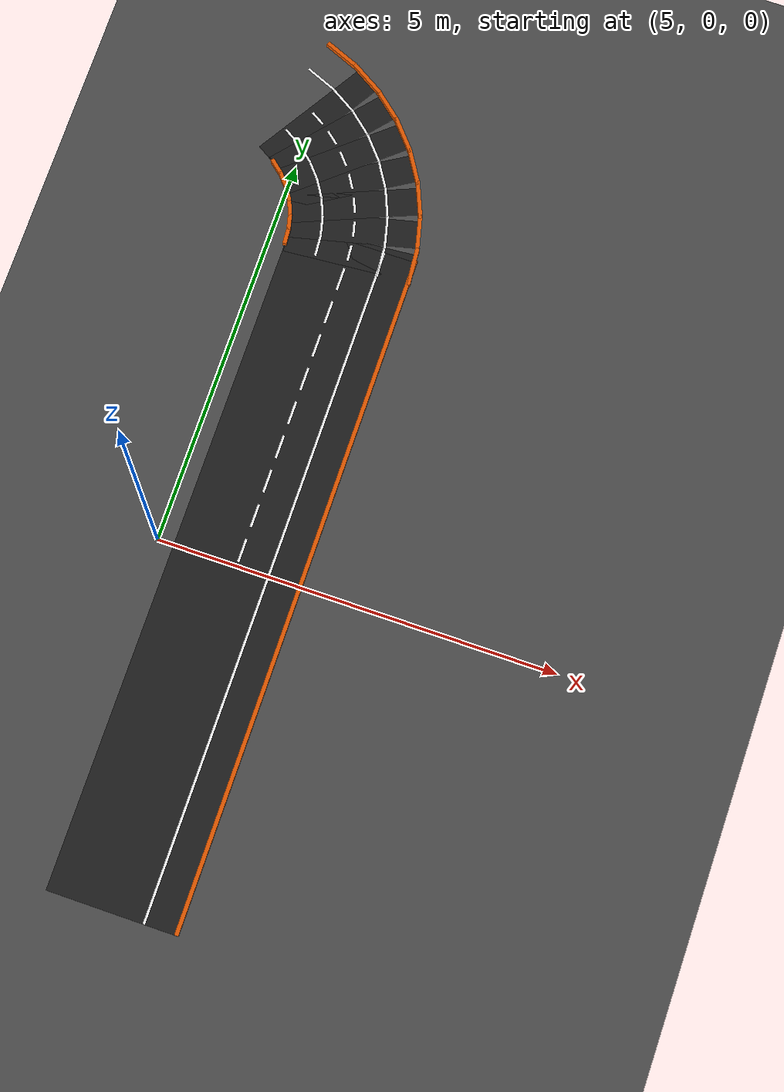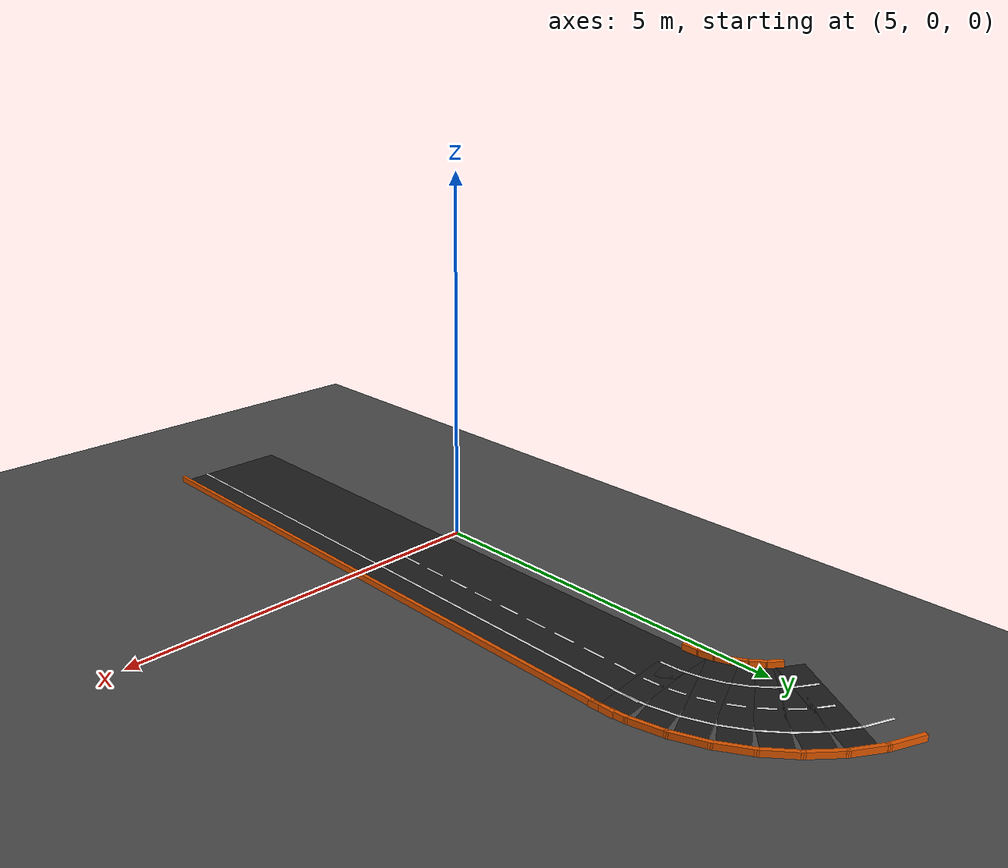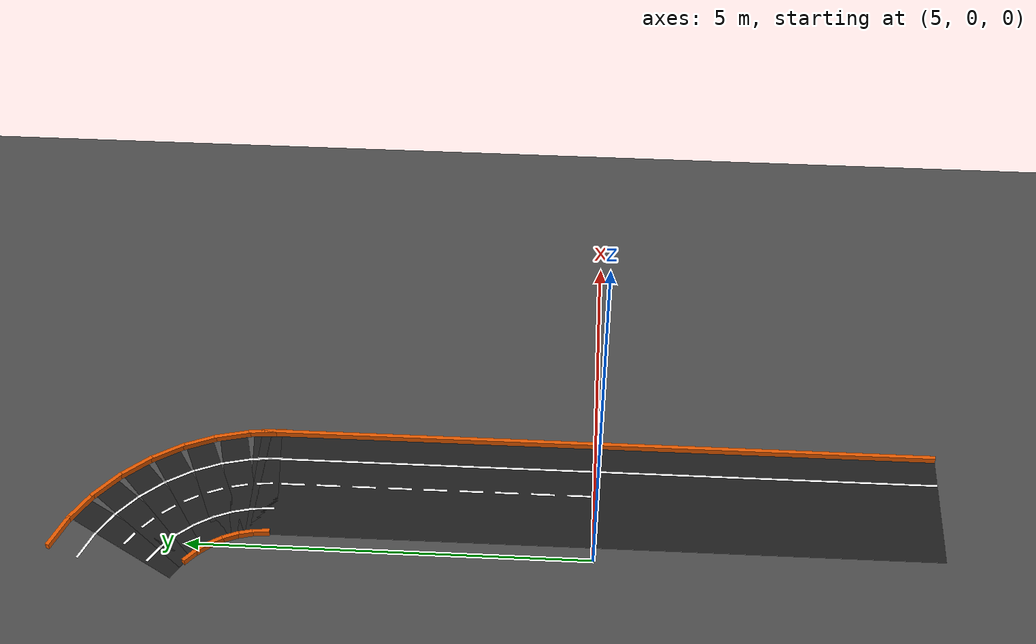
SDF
<sdf version="1.6">
 <world name="lab_track">
  <model name="ground_plane">
   <static>true</static>
   <link name="link">
    <collision name="collision">
     <geometry><plane><normal>0 0 1</normal><size>200 200</size></plane></geometry>
    </collision>
    <visual name="visual">
     <geometry><plane><normal>0 0 1</normal><size>200 200</size></plane></geometry>
     <material><ambient>0.3 0.3 0.3 1</ambient><diffuse>0.3 0.3 0.3 1</diffuse></material>
    </visual>
   </link>
  </model>
  <model name="m46">
   <static>true</static>
   <pose>6.0000 0.0000 0.00100 0 0 0.00000</pose>
   <link name="l">
    <visual name="v">
     <geometry><box><size>1.6000 8.6000 0.0010</size></box></geometry>
     <material><ambient>0.12 0.12 0.12 1</ambient><diffuse>0.12 0.12 0.12 1</diffuse></material>
    </visual>
   </link>
  </model>
  <model name="m48">
   <static>true</static>
   <pose>6.8000 0.0000 0.04000 0 0 0.00000</pose>
   <link name="l">
    <visual name="v">
     <geometry><box><size>0.0500 8.6000 0.0800</size></box></geometry>
     <material><ambient>0.9 0.35 0.0 1</ambient><diffuse>0.9 0.35 0.0 1</diffuse></material>
    </visual>
   </link>
  </model>
  <model name="m50">
   <static>true</static>
   <pose>6.4000 0.0000 0.00200 0 0 0.00000</pose>
   <link name="l">
    <visual name="v">
     <geometry><box><size>0.0300 8.6000 0.0010</size></box></geometry>
     <material><ambient>1 1 1 1</ambient><diffuse>1 1 1 1</diffuse></material>
    </visual>
   </link>
  </model>
  <model name="m60">
   <static>true</static>
   <pose>6.0000 0.2000 0.00200 0 0 0.00000</pose>
   <link name="l">
    <visual name="v">
     <geometry><box><size>0.0300 0.3000 0.0010</size></box></geometry>
     <material><ambient>1 1 1 1</ambient><diffuse>1 1 1 1</diffuse></material>
    </visual>
   </link>
  </model>
  <model name="m61">
   <static>true</static>
   <pose>6.0000 0.6500 0.00200 0 0 0.00000</pose>
   <link name="l">
    <visual name="v">
     <geometry><box><size>0.0300 0.3000 0.0010</size></box></geometry>
     <material><ambient>1 1 1 1</ambient><diffuse>1 1 1 1</diffuse></material>
    </visual>
   </link>
  </model>
  <model name="m62">
   <static>true</static>
   <pose>6.0000 1.1000 0.00200 0 0 0.00000</pose>
   <link name="l">
    <visual name="v">
     <geometry><box><size>0.0300 0.3000 0.0010</size></box></geometry>
     <material><ambient>1 1 1 1</ambient><diffuse>1 1 1 1</diffuse></material>
    </visual>
   </link>
  </model>
  <model name="m63">
   <static>true</static>
   <pose>6.0000 1.5500 0.00200 0 0 0.00000</pose>
   <link name="l">
    <visual name="v">
     <geometry><box><size>0.0300 0.3000 0.0010</size></box></geometry>
     <material><ambient>1 1 1 1</ambient><diffuse>1 1 1 1</diffuse></material>
    </visual>
   </link>
  </model>
  <model name="m64">
   <static>true</static>
   <pose>6.0000 2.0000 0.00200 0 0 0.00000</pose>
   <link name="l">
    <visual name="v">
     <geometry><box><size>0.0300 0.3000 0.0010</size></box></geometry>
     <material><ambient>1 1 1 1</ambient><diffuse>1 1 1 1</diffuse></material>
    </visual>
   </link>
  </model>
  <model name="m65">
   <static>true</static>
   <pose>6.0000 2.4500 0.00200 0 0 0.00000</pose>
   <link name="l">
    <visual name="v">
     <geometry><box><size>0.0300 0.3000 0.0010</size></box></geometry>
     <material><ambient>1 1 1 1</ambient><diffuse>1 1 1 1</diffuse></material>
    </visual>
   </link>
  </model>
  <model name="m66">
   <static>true</static>
   <pose>6.0000 2.9000 0.00200 0 0 0.00000</pose>
   <link name="l">
    <visual name="v">
     <geometry><box><size>0.0300 0.3000 0.0010</size></box></geometry>
     <material><ambient>1 1 1 1</ambient><diffuse>1 1 1 1</diffuse></material>
    </visual>
   </link>
  </model>
  <model name="m67">
   <static>true</static>
   <pose>6.0000 3.3500 0.00200 0 0 0.00000</pose>
   <link name="l">
    <visual name="v">
     <geometry><box><size>0.0300 0.3000 0.0010</size></box></geometry>
     <material><ambient>1 1 1 1</ambient><diffuse>1 1 1 1</diffuse></material>
    </visual>
   </link>
  </model>
  <model name="m68">
   <static>true</static>
   <pose>6.0000 3.8000 0.00200 0 0 0.00000</pose>
   <link name="l">
    <visual name="v">
     <geometry><box><size>0.0300 0.3000 0.0010</size></box></geometry>
     <material><ambient>1 1 1 1</ambient><diffuse>1 1 1 1</diffuse></material>
    </visual>
   </link>
  </model>
  <model name="m152">
   <static>true</static>
   <pose>5.9938 4.1569 0.00100 0 0 1.64934</pose>
   <link name="l">
    <visual name="v">
     <geometry><box><size>0.3519 1.6000 0.0010</size></box></geometry>
     <material><ambient>0.12 0.12 0.12 1</ambient><diffuse>0.12 0.12 0.12 1</diffuse></material>
    </visual>
   </link>
  </model>
  <model name="m153">
   <static>true</static>
   <pose>5.1963 4.0942 0.04000 0 0 1.64934</pose>
   <link name="l">
    <visual name="v">
     <geometry><box><size>0.2111 0.0500 0.0800</size></box></geometry>
     <material><ambient>0.9 0.35 0.0 1</ambient><diffuse>0.9 0.35 0.0 1</diffuse></material>
    </visual>
   </link>
  </model>
  <model name="m154">
   <static>true</static>
   <pose>6.7914 4.2197 0.04000 0 0 1.64934</pose>
   <link name="l">
    <visual name="v">
     <geometry><box><size>0.4926 0.0500 0.0800</size></box></geometry>
     <material><ambient>0.9 0.35 0.0 1</ambient><diffuse>0.9 0.35 0.0 1</diffuse></material>
    </visual>
   </link>
  </model>
  <model name="m155">
   <static>true</static>
   <pose>5.5951 4.1255 0.00200 0 0 1.64934</pose>
   <link name="l">
    <visual name="v">
     <geometry><box><size>0.2815 0.0300 0.0010</size></box></geometry>
     <material><ambient>1 1 1 1</ambient><diffuse>1 1 1 1</diffuse></material>
    </visual>
   </link>
  </model>
  <model name="m156">
   <static>true</static>
   <pose>6.3926 4.1883 0.00200 0 0 1.64934</pose>
   <link name="l">
    <visual name="v">
     <geometry><box><size>0.4222 0.0300 0.0010</size></box></geometry>
     <material><ambient>1 1 1 1</ambient><diffuse>1 1 1 1</diffuse></material>
    </visual>
   </link>
  </model>
  <model name="m157">
   <static>true</static>
   <pose>5.9938 4.1569 0.00200 0 0 1.64934</pose>
   <link name="l">
    <visual name="v">
     <geometry><box><size>0.2042 0.0300 0.0010</size></box></geometry>
     <material><ambient>1 1 1 1</ambient><diffuse>1 1 1 1</diffuse></material>
    </visual>
   </link>
  </model>
  <model name="m158">
   <static>true</static>
   <pose>5.9447 4.4669 0.00100 0 0 1.80642</pose>
   <link name="l">
    <visual name="v">
     <geometry><box><size>0.3519 1.6000 0.0010</size></box></geometry>
     <material><ambient>0.12 0.12 0.12 1</ambient><diffuse>0.12 0.12 0.12 1</diffuse></material>
    </visual>
   </link>
  </model>
  <model name="m159">
   <static>true</static>
   <pose>5.1668 4.2801 0.04000 0 0 1.80642</pose>
   <link name="l">
    <visual name="v">
     <geometry><box><size>0.2111 0.0500 0.0800</size></box></geometry>
     <material><ambient>0.9 0.35 0.0 1</ambient><diffuse>0.9 0.35 0.0 1</diffuse></material>
    </visual>
   </link>
  </model>
  <model name="m160">
   <static>true</static>
   <pose>6.7226 4.6536 0.04000 0 0 1.80642</pose>
   <link name="l">
    <visual name="v">
     <geometry><box><size>0.4926 0.0500 0.0800</size></box></geometry>
     <material><ambient>0.9 0.35 0.0 1</ambient><diffuse>0.9 0.35 0.0 1</diffuse></material>
    </visual>
   </link>
  </model>
  <model name="m161">
   <static>true</static>
   <pose>5.5558 4.3735 0.00200 0 0 1.80642</pose>
   <link name="l">
    <visual name="v">
     <geometry><box><size>0.2815 0.0300 0.0010</size></box></geometry>
     <material><ambient>1 1 1 1</ambient><diffuse>1 1 1 1</diffuse></material>
    </visual>
   </link>
  </model>
  <model name="m162">
   <static>true</static>
   <pose>6.3337 4.5603 0.00200 0 0 1.80642</pose>
   <link name="l">
    <visual name="v">
     <geometry><box><size>0.4222 0.0300 0.0010</size></box></geometry>
     <material><ambient>1 1 1 1</ambient><diffuse>1 1 1 1</diffuse></material>
    </visual>
   </link>
  </model>
  <model name="m163">
   <static>true</static>
   <pose>5.9447 4.4669 0.00200 0 0 1.80642</pose>
   <link name="l">
    <visual name="v">
     <geometry><box><size>0.2042 0.0300 0.0010</size></box></geometry>
     <material><ambient>1 1 1 1</ambient><diffuse>1 1 1 1</diffuse></material>
    </visual>
   </link>
  </model>
  <model name="m164">
   <static>true</static>
   <pose>5.8478 4.7654 0.00100 0 0 1.96350</pose>
   <link name="l">
    <visual name="v">
     <geometry><box><size>0.3519 1.6000 0.0010</size></box></geometry>
     <material><ambient>0.12 0.12 0.12 1</ambient><diffuse>0.12 0.12 0.12 1</diffuse></material>
    </visual>
   </link>
  </model>
  <model name="m165">
   <static>true</static>
   <pose>5.1087 4.4592 0.04000 0 0 1.96350</pose>
   <link name="l">
    <visual name="v">
     <geometry><box><size>0.2111 0.0500 0.0800</size></box></geometry>
     <material><ambient>0.9 0.35 0.0 1</ambient><diffuse>0.9 0.35 0.0 1</diffuse></material>
    </visual>
   </link>
  </model>
  <model name="m166">
   <static>true</static>
   <pose>6.5869 5.0715 0.04000 0 0 1.96350</pose>
   <link name="l">
    <visual name="v">
     <geometry><box><size>0.4926 0.0500 0.0800</size></box></geometry>
     <material><ambient>0.9 0.35 0.0 1</ambient><diffuse>0.9 0.35 0.0 1</diffuse></material>
    </visual>
   </link>
  </model>
  <model name="m167">
   <static>true</static>
   <pose>5.4782 4.6123 0.00200 0 0 1.96350</pose>
   <link name="l">
    <visual name="v">
     <geometry><box><size>0.2815 0.0300 0.0010</size></box></geometry>
     <material><ambient>1 1 1 1</ambient><diffuse>1 1 1 1</diffuse></material>
    </visual>
   </link>
  </model>
  <model name="m168">
   <static>true</static>
   <pose>6.2173 4.9184 0.00200 0 0 1.96350</pose>
   <link name="l">
    <visual name="v">
     <geometry><box><size>0.4222 0.0300 0.0010</size></box></geometry>
     <material><ambient>1 1 1 1</ambient><diffuse>1 1 1 1</diffuse></material>
    </visual>
   </link>
  </model>
  <model name="m169">
   <static>true</static>
   <pose>5.8478 4.7654 0.00200 0 0 1.96350</pose>
   <link name="l">
    <visual name="v">
     <geometry><box><size>0.2042 0.0300 0.0010</size></box></geometry>
     <material><ambient>1 1 1 1</ambient><diffuse>1 1 1 1</diffuse></material>
    </visual>
   </link>
  </model>
  <model name="m170">
   <static>true</static>
   <pose>5.7053 5.0450 0.00100 0 0 2.12058</pose>
   <link name="l">
    <visual name="v">
     <geometry><box><size>0.3519 1.6000 0.0010</size></box></geometry>
     <material><ambient>0.12 0.12 0.12 1</ambient><diffuse>0.12 0.12 0.12 1</diffuse></material>
    </visual>
   </link>
  </model>
  <model name="m171">
   <static>true</static>
   <pose>5.0232 4.6270 0.04000 0 0 2.12058</pose>
   <link name="l">
    <visual name="v">
     <geometry><box><size>0.2111 0.0500 0.0800</size></box></geometry>
     <material><ambient>0.9 0.35 0.0 1</ambient><diffuse>0.9 0.35 0.0 1</diffuse></material>
    </visual>
   </link>
  </model>
  <model name="m172">
   <static>true</static>
   <pose>6.3874 5.4630 0.04000 0 0 2.12058</pose>
   <link name="l">
    <visual name="v">
     <geometry><box><size>0.4926 0.0500 0.0800</size></box></geometry>
     <material><ambient>0.9 0.35 0.0 1</ambient><diffuse>0.9 0.35 0.0 1</diffuse></material>
    </visual>
   </link>
  </model>
  <model name="m173">
   <static>true</static>
   <pose>5.3642 4.8360 0.00200 0 0 2.12058</pose>
   <link name="l">
    <visual name="v">
     <geometry><box><size>0.2815 0.0300 0.0010</size></box></geometry>
     <material><ambient>1 1 1 1</ambient><diffuse>1 1 1 1</diffuse></material>
    </visual>
   </link>
  </model>
  <model name="m174">
   <static>true</static>
   <pose>6.0463 5.2540 0.00200 0 0 2.12058</pose>
   <link name="l">
    <visual name="v">
     <geometry><box><size>0.4222 0.0300 0.0010</size></box></geometry>
     <material><ambient>1 1 1 1</ambient><diffuse>1 1 1 1</diffuse></material>
    </visual>
   </link>
  </model>
  <model name="m175">
   <static>true</static>
   <pose>5.7053 5.0450 0.00200 0 0 2.12058</pose>
   <link name="l">
    <visual name="v">
     <geometry><box><size>0.2042 0.0300 0.0010</size></box></geometry>
     <material><ambient>1 1 1 1</ambient><diffuse>1 1 1 1</diffuse></material>
    </visual>
   </link>
  </model>
  <model name="m176">
   <static>true</static>
   <pose>5.5208 5.2989 0.00100 0 0 2.27765</pose>
   <link name="l">
    <visual name="v">
     <geometry><box><size>0.3519 1.6000 0.0010</size></box></geometry>
     <material><ambient>0.12 0.12 0.12 1</ambient><diffuse>0.12 0.12 0.12 1</diffuse></material>
    </visual>
   </link>
  </model>
  <model name="m177">
   <static>true</static>
   <pose>4.9125 4.7793 0.04000 0 0 2.27765</pose>
   <link name="l">
    <visual name="v">
     <geometry><box><size>0.2111 0.0500 0.0800</size></box></geometry>
     <material><ambient>0.9 0.35 0.0 1</ambient><diffuse>0.9 0.35 0.0 1</diffuse></material>
    </visual>
   </link>
  </model>
  <model name="m178">
   <static>true</static>
   <pose>6.1291 5.8185 0.04000 0 0 2.27765</pose>
   <link name="l">
    <visual name="v">
     <geometry><box><size>0.4926 0.0500 0.0800</size></box></geometry>
     <material><ambient>0.9 0.35 0.0 1</ambient><diffuse>0.9 0.35 0.0 1</diffuse></material>
    </visual>
   </link>
  </model>
  <model name="m179">
   <static>true</static>
   <pose>5.2166 5.0391 0.00200 0 0 2.27765</pose>
   <link name="l">
    <visual name="v">
     <geometry><box><size>0.2815 0.0300 0.0010</size></box></geometry>
     <material><ambient>1 1 1 1</ambient><diffuse>1 1 1 1</diffuse></material>
    </visual>
   </link>
  </model>
  <model name="m180">
   <static>true</static>
   <pose>5.8250 5.5587 0.00200 0 0 2.27765</pose>
   <link name="l">
    <visual name="v">
     <geometry><box><size>0.4222 0.0300 0.0010</size></box></geometry>
     <material><ambient>1 1 1 1</ambient><diffuse>1 1 1 1</diffuse></material>
    </visual>
   </link>
  </model>
  <model name="m181">
   <static>true</static>
   <pose>5.5208 5.2989 0.00200 0 0 2.27765</pose>
   <link name="l">
    <visual name="v">
     <geometry><box><size>0.2042 0.0300 0.0010</size></box></geometry>
     <material><ambient>1 1 1 1</ambient><diffuse>1 1 1 1</diffuse></material>
    </visual>
   </link>
  </model>
  <model name="m182">
   <static>true</static>
   <pose>5.2989 5.5208 0.00100 0 0 2.43473</pose>
   <link name="l">
    <visual name="v">
     <geometry><box><size>0.3519 1.6000 0.0010</size></box></geometry>
     <material><ambient>0.12 0.12 0.12 1</ambient><diffuse>0.12 0.12 0.12 1</diffuse></material>
    </visual>
   </link>
  </model>
  <model name="m183">
   <static>true</static>
   <pose>4.7793 4.9125 0.04000 0 0 2.43473</pose>
   <link name="l">
    <visual name="v">
     <geometry><box><size>0.2111 0.0500 0.0800</size></box></geometry>
     <material><ambient>0.9 0.35 0.0 1</ambient><diffuse>0.9 0.35 0.0 1</diffuse></material>
    </visual>
   </link>
  </model>
  <model name="m184">
   <static>true</static>
   <pose>5.8185 6.1291 0.04000 0 0 2.43473</pose>
   <link name="l">
    <visual name="v">
     <geometry><box><size>0.4926 0.0500 0.0800</size></box></geometry>
     <material><ambient>0.9 0.35 0.0 1</ambient><diffuse>0.9 0.35 0.0 1</diffuse></material>
    </visual>
   </link>
  </model>
  <model name="m185">
   <static>true</static>
   <pose>5.0391 5.2166 0.00200 0 0 2.43473</pose>
   <link name="l">
    <visual name="v">
     <geometry><box><size>0.2815 0.0300 0.0010</size></box></geometry>
     <material><ambient>1 1 1 1</ambient><diffuse>1 1 1 1</diffuse></material>
    </visual>
   </link>
  </model>
  <model name="m186">
   <static>true</static>
   <pose>5.5587 5.8250 0.00200 0 0 2.43473</pose>
   <link name="l">
    <visual name="v">
     <geometry><box><size>0.4222 0.0300 0.0010</size></box></geometry>
     <material><ambient>1 1 1 1</ambient><diffuse>1 1 1 1</diffuse></material>
    </visual>
   </link>
  </model>
  <model name="m187">
   <static>true</static>
   <pose>5.2989 5.5208 0.00200 0 0 2.43473</pose>
   <link name="l">
    <visual name="v">
     <geometry><box><size>0.2042 0.0300 0.0010</size></box></geometry>
     <material><ambient>1 1 1 1</ambient><diffuse>1 1 1 1</diffuse></material>
    </visual>
   </link>
  </model>
  <model name="m188">
   <static>true</static>
   <pose>5.0450 5.7053 0.00100 0 0 2.59181</pose>
   <link name="l">
    <visual name="v">
     <geometry><box><size>0.3519 1.6000 0.0010</size></box></geometry>
     <material><ambient>0.12 0.12 0.12 1</ambient><diffuse>0.12 0.12 0.12 1</diffuse></material>
    </visual>
   </link>
  </model>
  <model name="m190">
   <static>true</static>
   <pose>5.4630 6.3874 0.04000 0 0 2.59181</pose>
   <link name="l">
    <visual name="v">
     <geometry><box><size>0.4926 0.0500 0.0800</size></box></geometry>
     <material><ambient>0.9 0.35 0.0 1</ambient><diffuse>0.9 0.35 0.0 1</diffuse></material>
    </visual>
   </link>
  </model>
  <model name="m191">
   <static>true</static>
   <pose>4.8360 5.3642 0.00200 0 0 2.59181</pose>
   <link name="l">
    <visual name="v">
     <geometry><box><size>0.2815 0.0300 0.0010</size></box></geometry>
     <material><ambient>1 1 1 1</ambient><diffuse>1 1 1 1</diffuse></material>
    </visual>
   </link>
  </model>
  <model name="m192">
   <static>true</static>
   <pose>5.2540 6.0463 0.00200 0 0 2.59181</pose>
   <link name="l">
    <visual name="v">
     <geometry><box><size>0.4222 0.0300 0.0010</size></box></geometry>
     <material><ambient>1 1 1 1</ambient><diffuse>1 1 1 1</diffuse></material>
    </visual>
   </link>
  </model>
  <model name="m193">
   <static>true</static>
   <pose>5.0450 5.7053 0.00200 0 0 2.59181</pose>
   <link name="l">
    <visual name="v">
     <geometry><box><size>0.2042 0.0300 0.0010</size></box></geometry>
     <material><ambient>1 1 1 1</ambient><diffuse>1 1 1 1</diffuse></material>
    </visual>
   </link>
  </model>
  <model name="m196">
   <static>true</static>
   <pose>5.0715 6.5869 0.04000 0 0 2.74889</pose>
   <link name="l">
    <visual name="v">
     <geometry><box><size>0.4926 0.0500 0.0800</size></box></geometry>
     <material><ambient>0.9 0.35 0.0 1</ambient><diffuse>0.9 0.35 0.0 1</diffuse></material>
    </visual>
   </link>
  </model>
  <model name="m198">
   <static>true</static>
   <pose>4.9184 6.2173 0.00200 0 0 2.74889</pose>
   <link name="l">
    <visual name="v">
     <geometry><box><size>0.4222 0.0300 0.0010</size></box></geometry>
     <material><ambient>1 1 1 1</ambient><diffuse>1 1 1 1</diffuse></material>
    </visual>
   </link>
  </model>
 </world>
</sdf>
